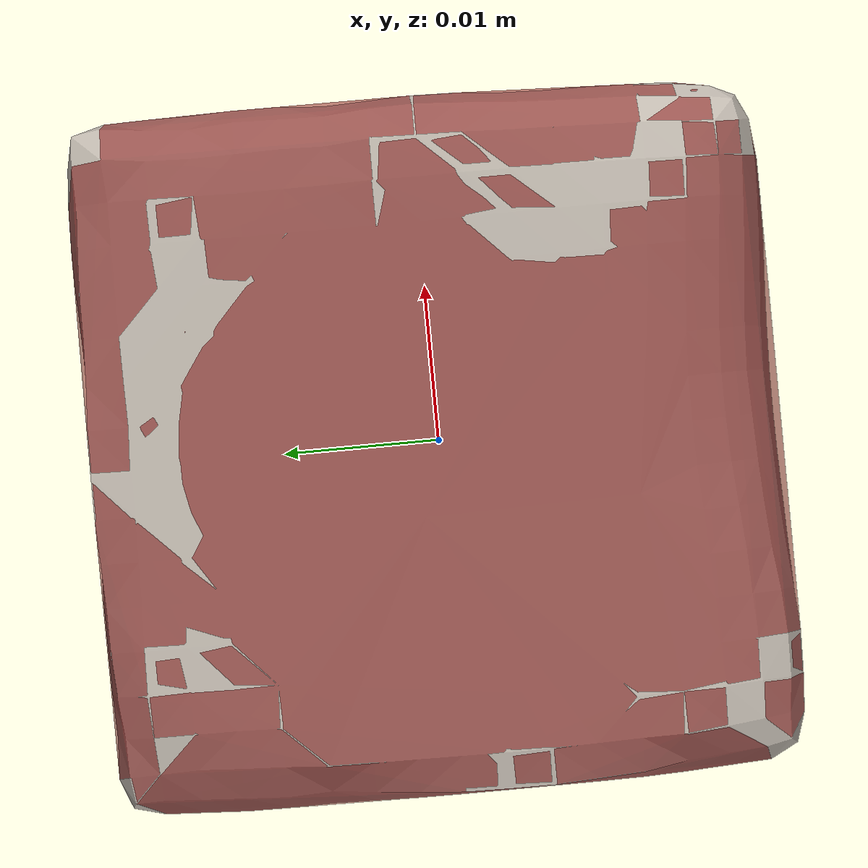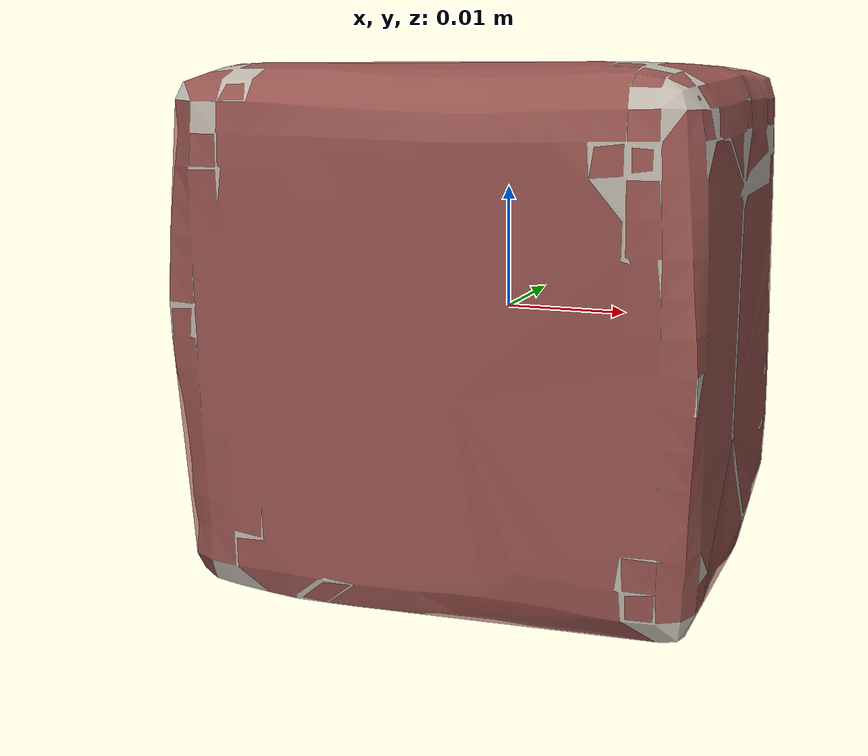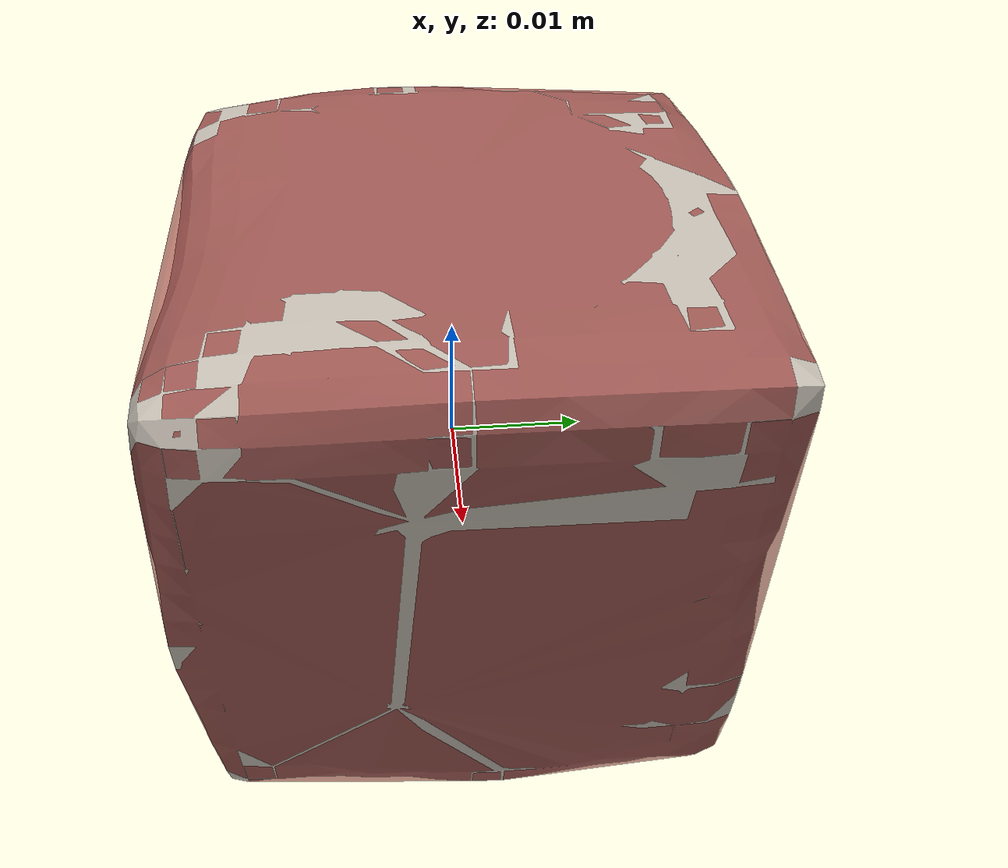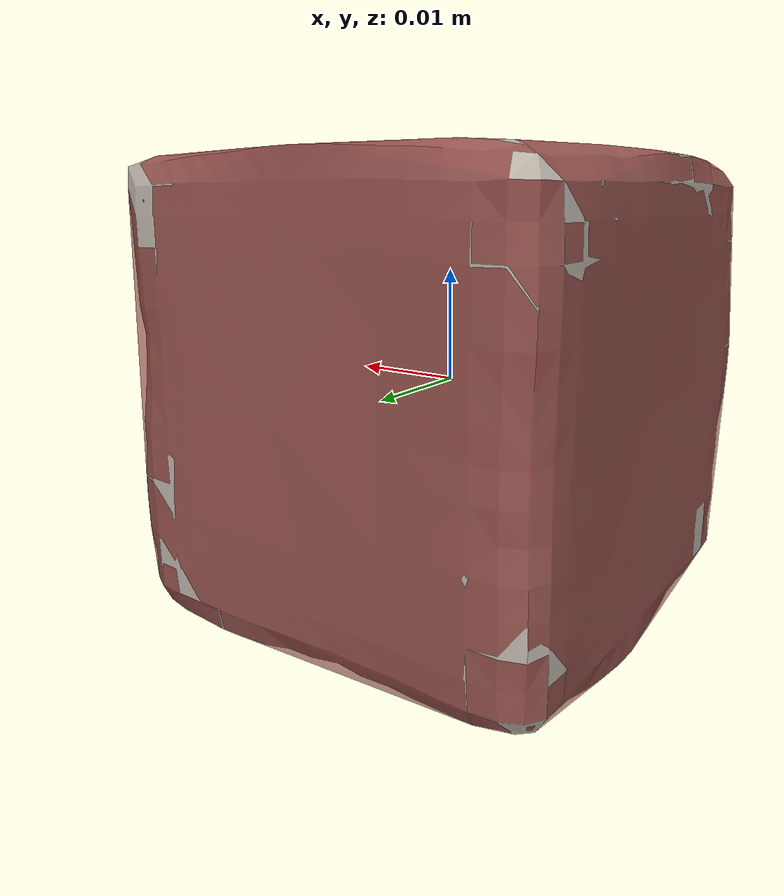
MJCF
<mujoco model="model">
  <compiler angle="radian"/>
  <asset>
    <mesh file="visual/IceCube001.obj" name="IceCube001_vis"/>
    <texture file="visual/T_BC001.png" name="IceCube001_material" type="2d"/>
    <material name="IceCube001_material" rgba="1 1 1 1.0" texture="IceCube001_material" shininess="0.01" specular="61"/>
    <mesh file="collision/collision_mesh_collision_0.obj" name="IceCube001_collision_mesh_0"/>
  </asset>
  <default>
    <default class="visual">
      <geom conaffinity="0" contype="0" group="1" type="mesh"/>
    </default>
    <default class="collision">
      <geom group="0" rgba="0.5 0 0 0.5"/>
    </default>
    <default class="spawn">
      <geom group="0" rgba="1 1 1 0.5" contype="0" conaffinity="0"/>
      <site group="0" rgba="1 1 1 0.5"/>
    </default>
    <default class="region">
      <geom group="1" conaffinity="0" contype="0" rgba="0 1 0 0" mass="0"/>
    </default>
  </default>
  <worldbody>
    <body>
      <body name="object">
        <geom mesh="IceCube001_vis" type="mesh" solimp="0.998 0.998 0.001" solref="0.001 1" density="100" friction="0.95 0.3 0.1" class="visual" material="IceCube001_material"/>
        <geom class="region" name="reg_bbox" type="box" pos="0.0 0.0 0.0" size="0.019939 0.019938 0.019939"/>
        <geom mesh="IceCube001_collision_mesh_0" type="mesh" class="collision"/>
      </body>
    </body>
  </worldbody>
  <actuator/>
</mujoco>
